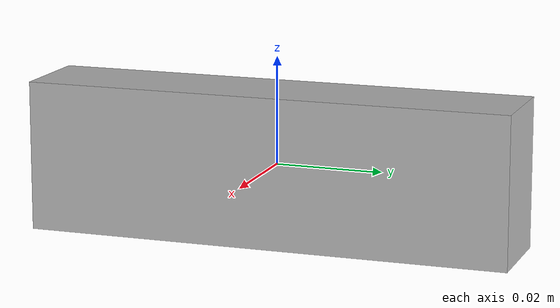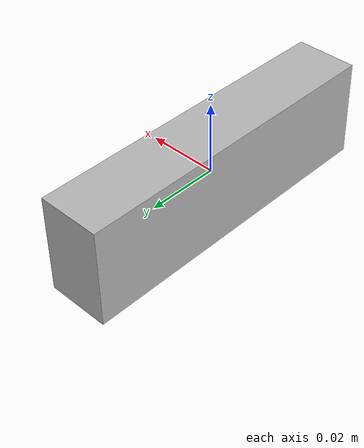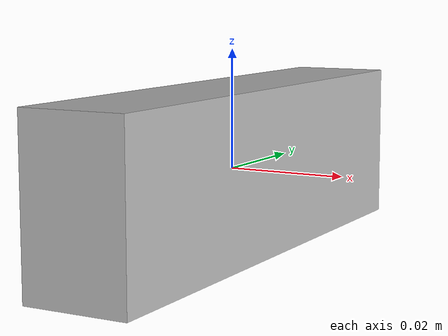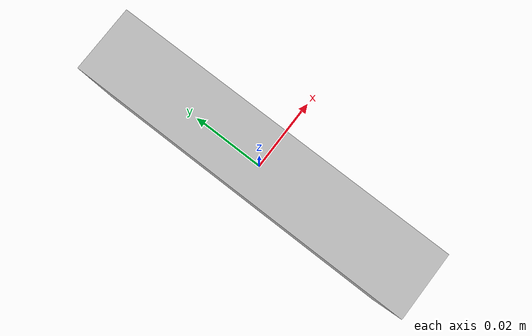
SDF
<?xml version="1.0"?>
<sdf version="1.9">
  <model name="OakD-Benchmark">
    <link name="camera_link">
      <inertial><mass>0.061</mass><inertia><ixx>0.0000460804</ixx><iyy>0.0000055421</iyy><izz>0.0000436519</izz></inertia></inertial>
      <collision name="body"><geometry><box><size>0.0175 0.091 0.028</size></box></geometry></collision>
      <visual name="body"><geometry><box><size>0.0175 0.091 0.028</size></box></geometry></visual>
      <sensor name="rgbd" type="rgbd_camera">
        <topic>/benchmark/rgbd</topic>
        <gz_frame_id>camera_link</gz_frame_id>
        <camera><horizontal_fov>1.274</horizontal_fov><image><width>160</width><height>120</height><format>R8G8B8</format></image><clip><near>0.2</near><far>19.1</far></clip></camera>
        <always_on>1</always_on><update_rate>10</update_rate><visualize>false</visualize>
      </sensor>
    </link>
  </model>
</sdf>
